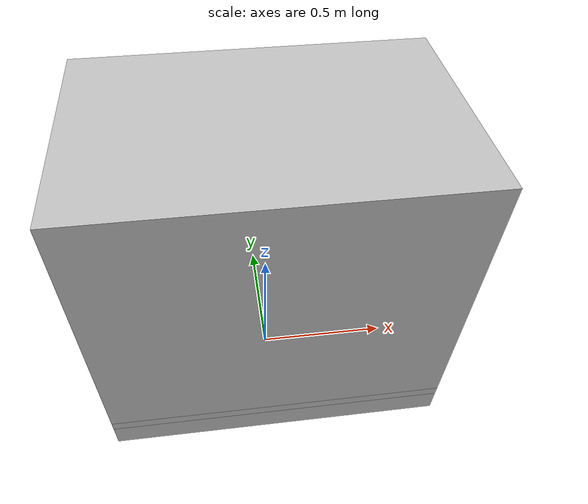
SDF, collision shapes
<?xml version='1.0'?>
<sdf version='1.7'>
  <model name='pallet_box_mobile'>
    <pose>0 0 0.01 0 0 0</pose>
    <self_collide>false</self_collide>
    <!-- BASE_LINK FRAME -->
    <link name='pallet_base'>
      <pose>0 0 0 0 0 0</pose>
      <inertial>
        <pose>0 0 0.4 0 0 0</pose>
        <mass>200</mass>
        <inertia>
          <ixx>5</ixx> <!-- original value: 0.1 -->
          <ixy>0</ixy>
          <ixz>0</ixz>
          <iyy>5</iyy> <!-- original value: 0.1 -->
          <iyz>0</iyz>
          <izz>5</izz> <!-- original value: 0.1 -->
        </inertia>
      </inertial>
      <collision name="pallet_top_collision">
        <pose>0 0 0.125 0 0 0</pose>
        <geometry>
          <box>
            <size>1.22 0.8 0.04</size>
          </box>
        </geometry>
        <surface>
          <friction>
            <ode>
              <mu>0.4</mu>
              <mu2>0.4</mu2>
            </ode>
          </friction>
        </surface>
      </collision>
      <collision name="pallet_center_collision">
        <pose>0 0 0.055 0 0 0</pose>
        <geometry>
          <box>
            <size>1.22 0.8 0.1</size>
          </box>
        </geometry>
      </collision>
      <collision name="boxes_collision">
        <pose>0 0 0.644 0 0 0</pose>
        <geometry>
          <box>
            <size>1.22 0.8 1</size>
          </box>
        </geometry>
      </collision>
      <visual name='pallet_visual'>
        <pose>0 0 0 0 0 0</pose>
        <geometry>
          <mesh>
            <scale>1 1 1</scale>
            <uri>model://pallet_box_mobile/meshes/pallet.dae</uri>
          </mesh>
        </geometry>
      </visual>
      <visual name='boxes_visual'>
        <pose>-0.053875 0 0 0 0 0</pose>
        <geometry>
          <mesh>
            <scale>1 1 1</scale>
            <uri>model://pallet_box_mobile/meshes/boxes.dae</uri>
          </mesh>
        </geometry>
      </visual>
    </link>
    <plugin filename="ignition-gazebo-pose-publisher-system" name="ignition::gazebo::systems::PosePublisher">
      <publish_link_pose>true</publish_link_pose>
      <publish_collision_pose>false</publish_collision_pose>
      <publish_visual_pose>false</publish_visual_pose>
      <publish_nested_model_pose>true</publish_nested_model_pose>
      <update_frequency>20</update_frequency>
    </plugin>
    <static>0</static>
  </model>
</sdf>
